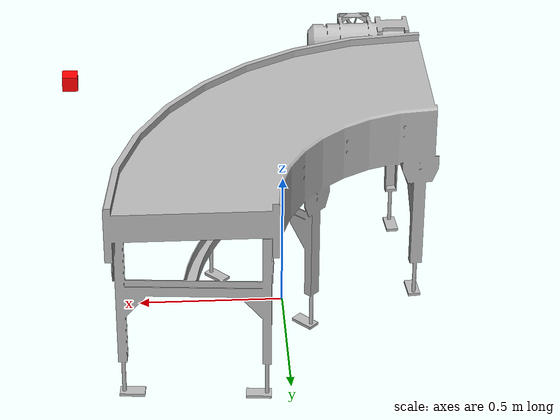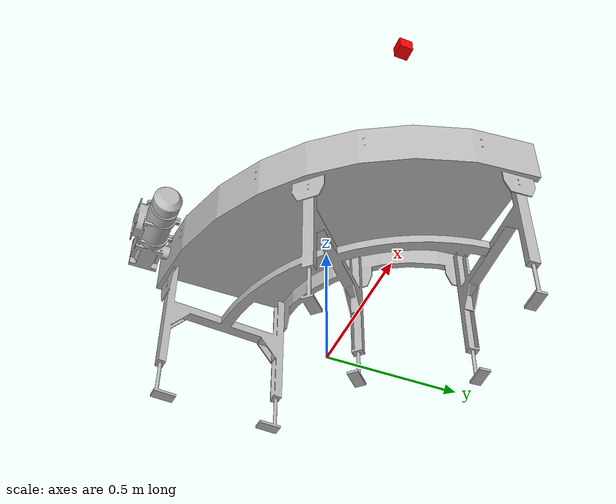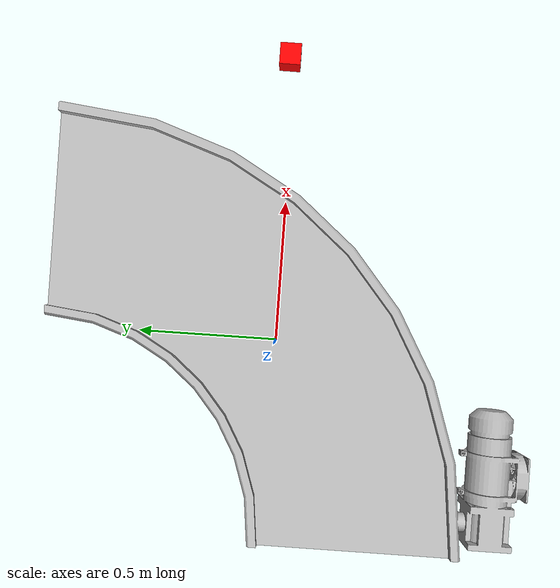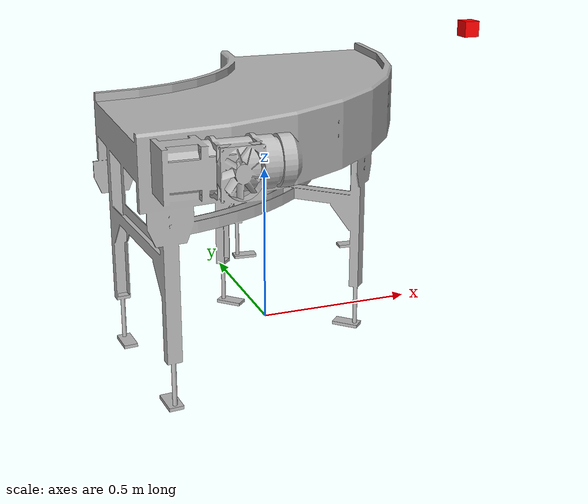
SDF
<?xml version="1.0" ?>
<sdf version="1.6">
  <model name="left_1m">
    <static>false</static>

    <link name="link">
      <collision name="collision">
        <pose>0 0 0.597456 0 0 0</pose>
        <geometry>
          <mesh>
            <uri>model://left_1m/meshes/col_left_1m.obj</uri>
            <scale>1 1 1</scale>
          </mesh>
        </geometry>
      </collision>

      <visual name="visual">
        <pose>0 0 0.597456 0 0 0</pose>
        <geometry>
          <mesh>
            <uri>model://left_1m/meshes/left_1m.obj</uri>
            <scale>1 1 1</scale>
          </mesh>
        </geometry>
      </visual>

      <!-- Add inertial tag to main link if not already present -->
      <inertial>
        <mass>50.0</mass>
        <inertia>
          <ixx>10</ixx>
          <ixy>0</ixy>
          <ixz>0</ixz>
          <iyy>10</iyy>
          <iyz>0</iyz>
          <izz>10</izz>
        </inertia>
      </inertial>
    </link>

    <!-- ==================== CAMERA LINK ==================== -->
    <link name="camera_link">
      <pose>0.7 0 0.9 0 0 3.140</pose>
      <inertial>
        <mass>0.0</mass>
        <inertia>
          <ixx>0.000</ixx>
          <ixy>0</ixy>
          <ixz>0</ixz>
          <iyy>0.000</iyy>
          <iyz>0</iyz>
          <izz>0.000</izz>
        </inertia>
      </inertial>
      <visual name="camera_visual">
        <geometry>
          <box>
            <size>0.05 0.05 0.05</size>
          </box>
        </geometry>
        <material>
          <ambient>1 0 0 1</ambient>
          <diffuse>1 0 0 1</diffuse>
        </material>
      </visual>
      <collision name="camera_collision">
        <geometry>
          <box>
            <size>0.05 0.05 0.05</size>
          </box>
        </geometry>
      </collision>

      <!-- The camera sensor itself -->
      <sensor name="camera_sensor" type="camera">
        <camera>
          <camera_info_topic>camera/camera_info</camera_info_topic>
          <horizontal_fov>1.047</horizontal_fov>
          <image>
            <width>720</width>
            <height>640</height>
            <format>R8G8B8</format>
          </image>
          <clip>
            <near>0.1</near>
            <far>100</far>
          </clip>
        </camera>
        <always_on>true</always_on>
        <update_rate>30</update_rate>
        <topic>camera/image_raw</topic>
        <gz_frame_id>camera_link_optical</gz_frame_id>
      </sensor>
    </link>

    <!-- ==================== CAMERA OPTICAL FRAME ==================== -->
    <link name="camera_link_optical">
      <pose>0 0 0 0 0 0</pose>
    </link>

    <!-- ==================== LIGHT LINKS (Zero mass, kinematic, no collision) ==================== -->
    <link name="light_link1">
      <pose>-1.5 0.3 0.9 -0.4 -1.41 0</pose>
      <kinematic>true</kinematic>
      <inertial>
        <mass>0.0</mass>
        <inertia>
          <ixx>0.0</ixx>
          <ixy>0.0</ixy>
          <ixz>0.0</ixz>
          <iyy>0.0</iyy>
          <iyz>0.0</iyz>
          <izz>0.0</izz>
        </inertia>
      </inertial>
      <!-- No collision tag = no physical interaction -->
      <light name="spot_light1" type="spot">
        <cast_shadows>false</cast_shadows>
        <diffuse>0.8 0.8 0.8 1</diffuse>
        <specular>0.2 0.2 0.2 1</specular>
        <attenuation>
          <range>10</range>
          <constant>0.2</constant>
          <linear>0.01</linear>
          <quadratic>0</quadratic>
        </attenuation>
        <direction>0 0 -1</direction>
        <spot>
          <inner_angle>0.1</inner_angle>
          <outer_angle>0.5</outer_angle>
          <falloff>1.2</falloff>
        </spot>
      </light>
    </link>

    <link name="light_link2">
      <pose>-1.5 -0.8 0.9 0.4 -1.41 0</pose>
      <kinematic>true</kinematic>
      <inertial>
        <mass>0.0</mass>
        <inertia>
          <ixx>0.0</ixx>
          <ixy>0.0</ixy>
          <ixz>0.0</ixz>
          <iyy>0.0</iyy>
          <iyz>0.0</iyz>
          <izz>0.0</izz>
        </inertia>
      </inertial>
      <!-- No collision tag = no physical interaction -->
      <light name="spot_light2" type="spot">
        <cast_shadows>false</cast_shadows>
        <diffuse>0.8 0.8 0.8 1</diffuse>
        <specular>0.2 0.2 0.2 1</specular>
        <attenuation>
          <range>10</range>
          <constant>0.2</constant>
          <linear>0.01</linear>
          <quadratic>0</quadratic>
        </attenuation>
        <direction>0 0 -1</direction>
        <spot>
          <inner_angle>0.1</inner_angle>
          <outer_angle>0.5</outer_angle>
          <falloff>1.2</falloff>
        </spot>
      </light>
    </link>

    <!-- ==================== JOINTS ==================== -->
    <!-- Fixed joint: attaches camera to the main body -->
    <joint name="camera_joint" type="fixed">
      <parent>link</parent>
      <child>camera_link</child>
      <pose>0 0 0 0 0 0</pose>
    </joint>

    <!-- Fixed joint: optical frame (rotates to camera convention: Z forward) -->
    <joint name="camera_optical_joint" type="fixed">
      <parent>camera_link</parent>
      <child>camera_link_optical</child>
      <pose>0 0 0 -1.5708 0 -1.5708</pose>
    </joint>

    <!-- Fixed joint: attaches light_link1 to the main body -->
    <joint name="light_joint1" type="fixed">
      <parent>link</parent>
      <child>light_link1</child>
      <pose>0 0 0 0 0 0</pose>
    </joint>

    <!-- Fixed joint: attaches light_link2 to the main body -->
    <joint name="light_joint2" type="fixed">
      <parent>link</parent>
      <child>light_link2</child>
      <pose>0 0 0 0 0 0</pose>
    </joint>

  </model>
</sdf>
